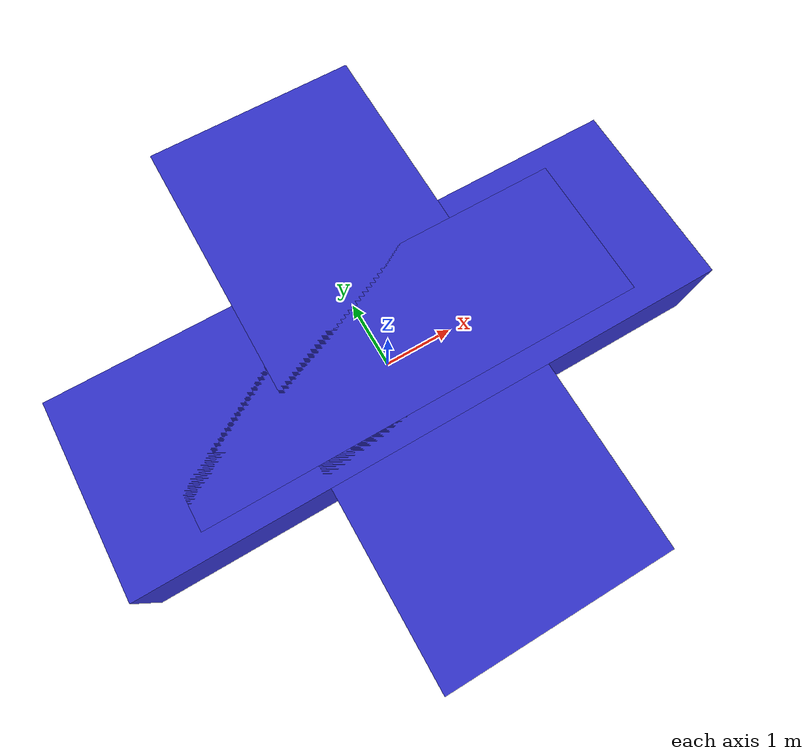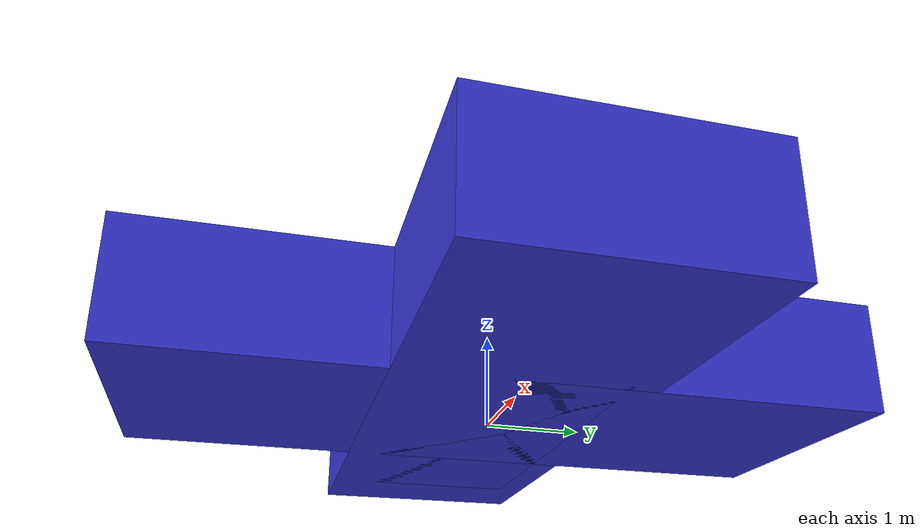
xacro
<!-- 底盘 -->
<robot xmlns:xacro="http://www.ros.org/wiki/xacro" name="obs_car">
    <!-- 颜色 -->
    <material name="blue">
        <color rgba="0.2 0.2 0.8 0.9"/>
    </material>

    <!-- 根坐标 -->
    <link name="map"/>

    <!-- 障碍车生成函数, 参数: id号, 长宽高-->
    <xacro:macro name="create_obs_car" params="id car_length car_width car_height color">
        <!-- 底盘在map的投影点 -->
        <link name="base_footprint_obs${id}"/>

        <!-- 底盘 -->
        <link name="base_link_obs${id}">
            <visual>
                <geometry>
                    <box size="${car_length} ${car_width} ${car_height}"/>
                </geometry>
                <material name="${color}"/>
            </visual>
        </link>

        <!-- 投影点关联到地图 -->
        <joint name="footprint${id}_to_map" type="fixed">
            <parent link="map"/>
            <child link="base_footprint_obs${id}"/>
        </joint>

        <!-- 底盘关联到投影点 -->
        <joint name="base_to_footprint${id}" type="fixed">
            <parent link="base_footprint_obs${id}"/>
            <child link="base_link_obs${id}"/>
            <origin xyz="0.0 0.0 ${car_height / 2.0}"/>
        </joint>
    </xacro:macro>

    <!-- 调用函数 -->

    <xacro:create_obs_car id="1" car_length="8.0" car_width="2.6" car_height="1.2" color="blue"/>
    <xacro:create_obs_car id="2" car_length="6.0" car_width="2.0" car_height="1.2" color="blue"/>
    <xacro:create_obs_car id="3" car_length="3.0" car_width="7.6" car_height="1.2" color="blue"/>
</robot>
